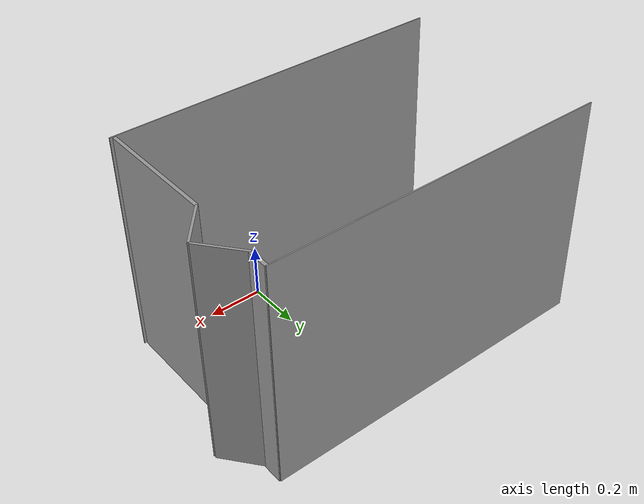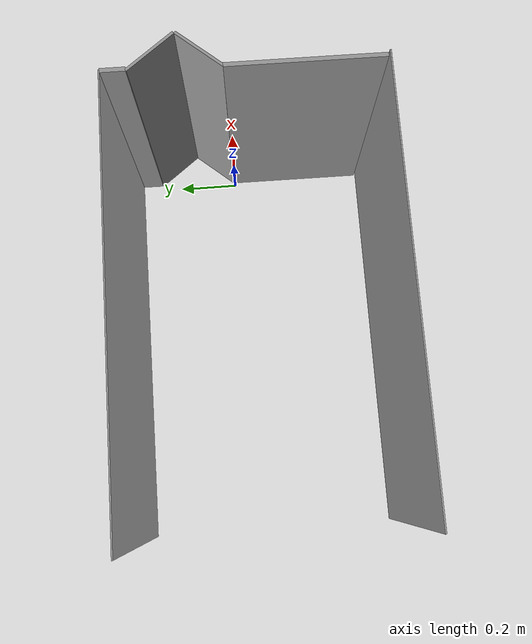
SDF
<?xml version='1.0'?>
<sdf version='1.7'>
  <model name='V-marker_left_side'>
    <link name='link_0'>
      <inertial>
        <mass>0.00671136</mass>
        <inertia>
          <ixx>0.00055938</ixx>
          <ixy>0</ixy>
          <ixz>0</ixz>
          <iyy>0.00069373</iyy>
          <iyz>0</iyz>
          <izz>0.00013455</izz>
        </inertia>
        <pose>0 0 0 0 -0 0</pose>
      </inertial>
      <pose>0.280926 0.243675 0 0 0 -0.906067</pose>
      <gravity>1</gravity>
      <self_collide>0</self_collide>
      <kinematic>0</kinematic>
      <enable_wind>0</enable_wind>
      <visual name='visual'>
        <pose>0 0 0 0 -0 0</pose>
        <geometry>
          <box>
            <size>0.2 0.01 1</size>
          </box>
        </geometry>
        <material>
          <lighting>1</lighting>
          <script>
            <uri>file://media/materials/scripts/gazebo.material</uri>
            <name>Gazebo/Grey</name>
          </script>
          <shader type='pixel'>
            <normal_map>__default__</normal_map>
          </shader>
          <ambient>0.3 0.3 0.3 1</ambient>
          <diffuse>0.7 0.7 0.7 1</diffuse>
          <specular>0.01 0.01 0.01 1</specular>
          <emissive>0 0 0 1</emissive>
        </material>
        <transparency>0</transparency>
        <cast_shadows>1</cast_shadows>
      </visual>
      <collision name='collision'>
        <laser_retro>0</laser_retro>
        <max_contacts>10</max_contacts>
        <pose>0 0 0 0 -0 0</pose>
        <geometry>
          <box>
            <size>0.2 0.01 1</size>
          </box>
        </geometry>
        <surface>
          <friction>
            <ode>
              <mu>1</mu>
              <mu2>1</mu2>
              <fdir1>0 0 0</fdir1>
              <slip1>0</slip1>
              <slip2>0</slip2>
            </ode>
            <torsional>
              <coefficient>1</coefficient>
              <patch_radius>0</patch_radius>
              <surface_radius>0</surface_radius>
              <use_patch_radius>1</use_patch_radius>
              <ode>
                <slip>0</slip>
              </ode>
            </torsional>
          </friction>
          <bounce>
            <restitution_coefficient>0</restitution_coefficient>
            <threshold>1e+06</threshold>
          </bounce>
          <contact>
            <collide_without_contact>0</collide_without_contact>
            <collide_without_contact_bitmask>1</collide_without_contact_bitmask>
            <collide_bitmask>1</collide_bitmask>
            <ode>
              <soft_cfm>0</soft_cfm>
              <soft_erp>0.2</soft_erp>
              <kp>1e+13</kp>
              <kd>1</kd>
              <max_vel>0.01</max_vel>
              <min_depth>0</min_depth>
            </ode>
            <bullet>
              <split_impulse>1</split_impulse>
              <split_impulse_penetration_threshold>-0.01</split_impulse_penetration_threshold>
              <soft_cfm>0</soft_cfm>
              <soft_erp>0.2</soft_erp>
              <kp>1e+13</kp>
              <kd>1</kd>
            </bullet>
          </contact>
        </surface>
      </collision>
    </link>
    <link name='link_0_clone'>
      <inertial>
        <mass>0.00493221</mass>
        <inertia>
          <ixx>0.00041106</ixx>
          <ixy>0</ixy>
          <ixz>0</ixz>
          <iyy>0.000431</iyy>
          <iyz>0</iyz>
          <izz>2.002e-05</izz>
        </inertia>
        <pose>0 0 0 0 -0 0</pose>
      </inertial>
      <pose>0.278572 0.084188 0 0 -0 0.868221</pose>
      <gravity>1</gravity>
      <self_collide>0</self_collide>
      <kinematic>0</kinematic>
      <enable_wind>0</enable_wind>
      <visual name='visual'>
        <pose>0 0 0 0 -0 0</pose>
        <geometry>
          <box>
            <size>0.2 0.01 1</size>
          </box>
        </geometry>
        <material>
          <lighting>1</lighting>
          <script>
            <uri>file://media/materials/scripts/gazebo.material</uri>
            <name>Gazebo/Grey</name>
          </script>
          <shader type='pixel'>
            <normal_map>__default__</normal_map>
          </shader>
          <ambient>0.3 0.3 0.3 1</ambient>
          <diffuse>0.7 0.7 0.7 1</diffuse>
          <specular>0.01 0.01 0.01 1</specular>
          <emissive>0 0 0 1</emissive>
        </material>
        <transparency>0</transparency>
        <cast_shadows>1</cast_shadows>
      </visual>
      <collision name='collision_1'>
        <laser_retro>0</laser_retro>
        <max_contacts>10</max_contacts>
        <pose>0 0 0 0 -0 0</pose>
        <geometry>
          <box>
            <size>0.2 0.01 1</size>
          </box>
        </geometry>
        <surface>
          <friction>
            <ode>
              <mu>1</mu>
              <mu2>1</mu2>
              <fdir1>0 0 0</fdir1>
              <slip1>0</slip1>
              <slip2>0</slip2>
            </ode>
            <torsional>
              <coefficient>1</coefficient>
              <patch_radius>0</patch_radius>
              <surface_radius>0</surface_radius>
              <use_patch_radius>1</use_patch_radius>
              <ode>
                <slip>0</slip>
              </ode>
            </torsional>
          </friction>
          <bounce>
            <restitution_coefficient>0</restitution_coefficient>
            <threshold>1e+06</threshold>
          </bounce>
          <contact>
            <collide_without_contact>0</collide_without_contact>
            <collide_without_contact_bitmask>1</collide_without_contact_bitmask>
            <collide_bitmask>1</collide_bitmask>
            <ode>
              <soft_cfm>0</soft_cfm>
              <soft_erp>0.2</soft_erp>
              <kp>1e+13</kp>
              <kd>1</kd>
              <max_vel>0.01</max_vel>
              <min_depth>0</min_depth>
            </ode>
            <bullet>
              <split_impulse>1</split_impulse>
              <split_impulse_penetration_threshold>-0.01</split_impulse_penetration_threshold>
              <soft_cfm>0</soft_cfm>
              <soft_erp>0.2</soft_erp>
              <kp>1e+13</kp>
              <kd>1</kd>
            </bullet>
          </contact>
        </surface>
      </collision>
    </link>
    <link name='link_1'>
      <inertial>
        <mass>0.00223842</mass>
        <inertia>
          <ixx>0.000187845</ixx>
          <ixy>0</ixy>
          <ixz>0</ixz>
          <iyy>0.000186577</iyy>
          <iyz>0</iyz>
          <izz>1.35208e-06</izz>
        </inertia>
        <pose>0 0 0 0 -0 0</pose>
      </inertial>
      <pose>0.224072 0.363978 0 0 -0 0</pose>
      <gravity>1</gravity>
      <self_collide>0</self_collide>
      <kinematic>0</kinematic>
      <enable_wind>0</enable_wind>
      <visual name='visual'>
        <pose>0 0 0 0 -0 0</pose>
        <geometry>
          <box>
            <size>0.015 0.083806 1</size>
          </box>
        </geometry>
        <material>
          <lighting>1</lighting>
          <script>
            <uri>file://media/materials/scripts/gazebo.material</uri>
            <name>Gazebo/Grey</name>
          </script>
          <shader type='pixel'>
            <normal_map>__default__</normal_map>
          </shader>
          <ambient>0.3 0.3 0.3 1</ambient>
          <diffuse>0.7 0.7 0.7 1</diffuse>
          <specular>0.01 0.01 0.01 1</specular>
          <emissive>0 0 0 1</emissive>
        </material>
        <transparency>0</transparency>
        <cast_shadows>1</cast_shadows>
      </visual>
      <collision name='collision'>
        <laser_retro>0</laser_retro>
        <max_contacts>10</max_contacts>
        <pose>0 0 0 0 -0 0</pose>
        <geometry>
          <box>
            <size>0.015 0.083806 1</size>
          </box>
        </geometry>
        <surface>
          <friction>
            <ode>
              <mu>1</mu>
              <mu2>1</mu2>
              <fdir1>0 0 0</fdir1>
              <slip1>0</slip1>
              <slip2>0</slip2>
            </ode>
            <torsional>
              <coefficient>1</coefficient>
              <patch_radius>0</patch_radius>
              <surface_radius>0</surface_radius>
              <use_patch_radius>1</use_patch_radius>
              <ode>
                <slip>0</slip>
              </ode>
            </torsional>
          </friction>
          <bounce>
            <restitution_coefficient>0</restitution_coefficient>
            <threshold>1e+06</threshold>
          </bounce>
          <contact>
            <collide_without_contact>0</collide_without_contact>
            <collide_without_contact_bitmask>1</collide_without_contact_bitmask>
            <collide_bitmask>1</collide_bitmask>
            <ode>
              <soft_cfm>0</soft_cfm>
              <soft_erp>0.2</soft_erp>
              <kp>1e+13</kp>
              <kd>1</kd>
              <max_vel>0.01</max_vel>
              <min_depth>0</min_depth>
            </ode>
            <bullet>
              <split_impulse>1</split_impulse>
              <split_impulse_penetration_threshold>-0.01</split_impulse_penetration_threshold>
              <soft_cfm>0</soft_cfm>
              <soft_erp>0.2</soft_erp>
              <kp>1e+13</kp>
              <kd>1</kd>
            </bullet>
          </contact>
        </surface>
      </collision>
    </link>
    <link name='link_1_clone'>
      <inertial>
        <mass>0.0124672</mass>
        <inertia>
          <ixx>0.00133262</ixx>
          <ixy>0</ixy>
          <ixz>0</ixz>
          <iyy>0.00103917</iyy>
          <iyz>0</iyz>
          <izz>0.000293918</izz>
        </inertia>
        <pose>0 0 0 0 -0 0</pose>
      </inertial>
      <pose>0.217663 -0.254445 0 0 -0 0</pose>
      <gravity>1</gravity>
      <self_collide>0</self_collide>
      <kinematic>0</kinematic>
      <enable_wind>0</enable_wind>
      <visual name='visual'>
        <pose>0 0 0 0 -0 0</pose>
        <geometry>
          <box>
            <size>0.015 0.531675 1</size>
          </box>
        </geometry>
        <material>
          <lighting>1</lighting>
          <script>
            <uri>file://media/materials/scripts/gazebo.material</uri>
            <name>Gazebo/Grey</name>
          </script>
          <shader type='pixel'>
            <normal_map>__default__</normal_map>
          </shader>
          <ambient>0.3 0.3 0.3 1</ambient>
          <diffuse>0.7 0.7 0.7 1</diffuse>
          <specular>0.01 0.01 0.01 1</specular>
          <emissive>0 0 0 1</emissive>
        </material>
        <transparency>0</transparency>
        <cast_shadows>1</cast_shadows>
      </visual>
      <collision name='collision'>
        <laser_retro>0</laser_retro>
        <max_contacts>10</max_contacts>
        <pose>0 0 0 0 -0 0</pose>
        <geometry>
          <box>
            <size>0.015 0.531675 1</size>
          </box>
        </geometry>
        <surface>
          <friction>
            <ode>
              <mu>1</mu>
              <mu2>1</mu2>
              <fdir1>0 0 0</fdir1>
              <slip1>0</slip1>
              <slip2>0</slip2>
            </ode>
            <torsional>
              <coefficient>1</coefficient>
              <patch_radius>0</patch_radius>
              <surface_radius>0</surface_radius>
              <use_patch_radius>1</use_patch_radius>
              <ode>
                <slip>0</slip>
              </ode>
            </torsional>
          </friction>
          <bounce>
            <restitution_coefficient>0</restitution_coefficient>
            <threshold>1e+06</threshold>
          </bounce>
          <contact>
            <collide_without_contact>0</collide_without_contact>
            <collide_without_contact_bitmask>1</collide_without_contact_bitmask>
            <collide_bitmask>1</collide_bitmask>
            <ode>
              <soft_cfm>0</soft_cfm>
              <soft_erp>0.2</soft_erp>
              <kp>1e+13</kp>
              <kd>1</kd>
              <max_vel>0.01</max_vel>
              <min_depth>0</min_depth>
            </ode>
            <bullet>
              <split_impulse>1</split_impulse>
              <split_impulse_penetration_threshold>-0.01</split_impulse_penetration_threshold>
              <soft_cfm>0</soft_cfm>
              <soft_erp>0.2</soft_erp>
              <kp>1e+13</kp>
              <kd>1</kd>
            </bullet>
          </contact>
        </surface>
      </collision>
    </link>
    <link name='link_2'>
      <inertial>
        <mass>0.00755038</mass>
        <inertia>
          <ixx>0.00062921</ixx>
          <ixy>0</ixy>
          <ixz>0</ixz>
          <iyy>0.00221903</iyy>
          <iyz>0</iyz>
          <izz>0.00158985</izz>
        </inertia>
        <pose>0 0 0 0 -0 0</pose>
      </inertial>
      <pose>-0.522253 0.407331 0 0 -0 0</pose>
      <gravity>1</gravity>
      <self_collide>0</self_collide>
      <kinematic>0</kinematic>
      <enable_wind>0</enable_wind>
      <visual name='visual'>
        <pose>0 0 0 0 -0 0</pose>
        <geometry>
          <box>
            <size>1.5 0.004719 1</size>
          </box>
        </geometry>
        <material>
          <lighting>1</lighting>
          <script>
            <uri>file://media/materials/scripts/gazebo.material</uri>
            <name>Gazebo/Grey</name>
          </script>
          <shader type='pixel'>
            <normal_map>__default__</normal_map>
          </shader>
          <ambient>0.3 0.3 0.3 1</ambient>
          <diffuse>0.7 0.7 0.7 1</diffuse>
          <specular>0.01 0.01 0.01 1</specular>
          <emissive>0 0 0 1</emissive>
        </material>
        <transparency>0</transparency>
        <cast_shadows>1</cast_shadows>
      </visual>
      <collision name='collision'>
        <laser_retro>0</laser_retro>
        <max_contacts>10</max_contacts>
        <pose>0 0 0 0 -0 0</pose>
        <geometry>
          <box>
            <size>1.5 0.004719 1</size>
          </box>
        </geometry>
        <surface>
          <friction>
            <ode>
              <mu>1</mu>
              <mu2>1</mu2>
              <fdir1>0 0 0</fdir1>
              <slip1>0</slip1>
              <slip2>0</slip2>
            </ode>
            <torsional>
              <coefficient>1</coefficient>
              <patch_radius>0</patch_radius>
              <surface_radius>0</surface_radius>
              <use_patch_radius>1</use_patch_radius>
              <ode>
                <slip>0</slip>
              </ode>
            </torsional>
          </friction>
          <bounce>
            <restitution_coefficient>0</restitution_coefficient>
            <threshold>1e+06</threshold>
          </bounce>
          <contact>
            <collide_without_contact>0</collide_without_contact>
            <collide_without_contact_bitmask>1</collide_without_contact_bitmask>
            <collide_bitmask>1</collide_bitmask>
            <ode>
              <soft_cfm>0</soft_cfm>
              <soft_erp>0.2</soft_erp>
              <kp>1e+13</kp>
              <kd>1</kd>
              <max_vel>0.01</max_vel>
              <min_depth>0</min_depth>
            </ode>
            <bullet>
              <split_impulse>1</split_impulse>
              <split_impulse_penetration_threshold>-0.01</split_impulse_penetration_threshold>
              <soft_cfm>0</soft_cfm>
              <soft_erp>0.2</soft_erp>
              <kp>1e+13</kp>
              <kd>1</kd>
            </bullet>
          </contact>
        </surface>
      </collision>
    </link>
    <link name='link_2_clone'>
      <inertial>
        <mass>0.00694843</mass>
        <inertia>
          <ixx>0.00057905</ixx>
          <ixy>0</ixy>
          <ixz>0</ixz>
          <iyy>0.00183148</iyy>
          <iyz>0</iyz>
          <izz>0.00125246</izz>
        </inertia>
        <pose>0 0 0 0 -0 0</pose>
      </inertial>
      <pose>-0.515428 -0.527783 0 0 -0 0</pose>
      <gravity>1</gravity>
      <self_collide>0</self_collide>
      <kinematic>0</kinematic>
      <enable_wind>0</enable_wind>
      <visual name='visual'>
        <pose>0 0 0 0 -0 0</pose>
        <geometry>
          <box>
            <size>1.5 0.004719 1</size>
          </box>
        </geometry>
        <material>
          <lighting>1</lighting>
          <script>
            <uri>file://media/materials/scripts/gazebo.material</uri>
            <name>Gazebo/Grey</name>
          </script>
          <shader type='pixel'>
            <normal_map>__default__</normal_map>
          </shader>
          <ambient>0.3 0.3 0.3 1</ambient>
          <diffuse>0.7 0.7 0.7 1</diffuse>
          <specular>0.01 0.01 0.01 1</specular>
          <emissive>0 0 0 1</emissive>
        </material>
        <transparency>0</transparency>
        <cast_shadows>1</cast_shadows>
      </visual>
      <collision name='collision'>
        <laser_retro>0</laser_retro>
        <max_contacts>10</max_contacts>
        <pose>0 0 0 0 -0 0</pose>
        <geometry>
          <box>
            <size>1.5 0.004719 1</size>
          </box>
        </geometry>
        <surface>
          <friction>
            <ode>
              <mu>1</mu>
              <mu2>1</mu2>
              <fdir1>0 0 0</fdir1>
              <slip1>0</slip1>
              <slip2>0</slip2>
            </ode>
            <torsional>
              <coefficient>1</coefficient>
              <patch_radius>0</patch_radius>
              <surface_radius>0</surface_radius>
              <use_patch_radius>1</use_patch_radius>
              <ode>
                <slip>0</slip>
              </ode>
            </torsional>
          </friction>
          <bounce>
            <restitution_coefficient>0</restitution_coefficient>
            <threshold>1e+06</threshold>
          </bounce>
          <contact>
            <collide_without_contact>0</collide_without_contact>
            <collide_without_contact_bitmask>1</collide_without_contact_bitmask>
            <collide_bitmask>1</collide_bitmask>
            <ode>
              <soft_cfm>0</soft_cfm>
              <soft_erp>0.2</soft_erp>
              <kp>1e+13</kp>
              <kd>1</kd>
              <max_vel>0.01</max_vel>
              <min_depth>0</min_depth>
            </ode>
            <bullet>
              <split_impulse>1</split_impulse>
              <split_impulse_penetration_threshold>-0.01</split_impulse_penetration_threshold>
              <soft_cfm>0</soft_cfm>
              <soft_erp>0.2</soft_erp>
              <kp>1e+13</kp>
              <kd>1</kd>
            </bullet>
          </contact>
        </surface>
      </collision>
    </link>
    <static>0</static>
    <allow_auto_disable>1</allow_auto_disable>
  </model>
</sdf>
